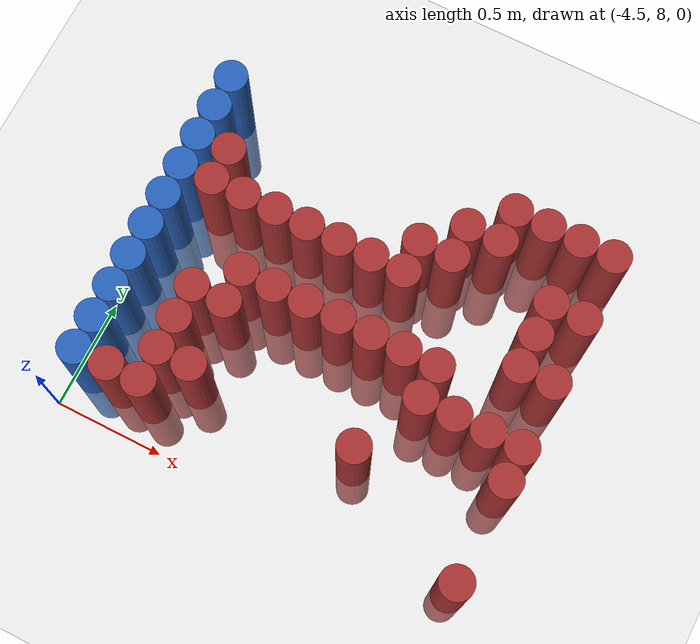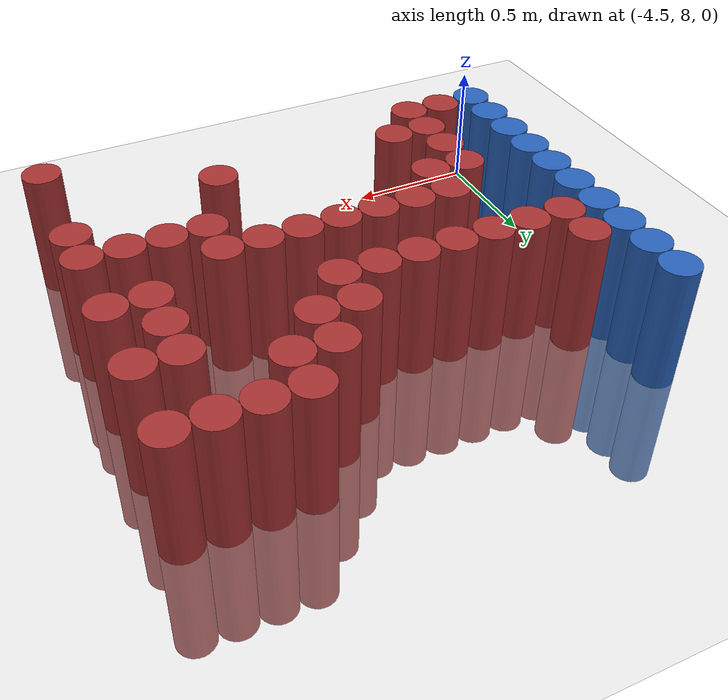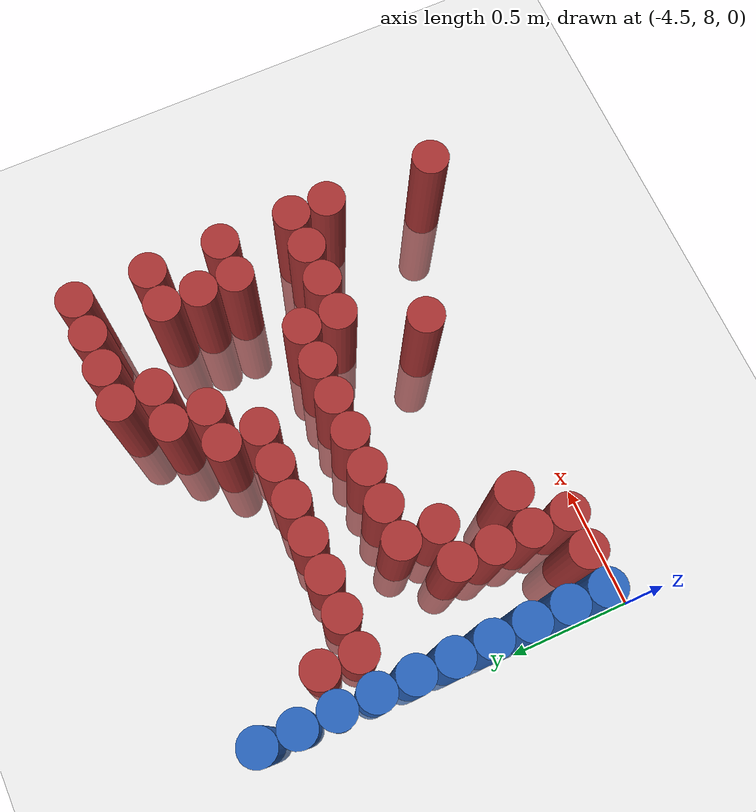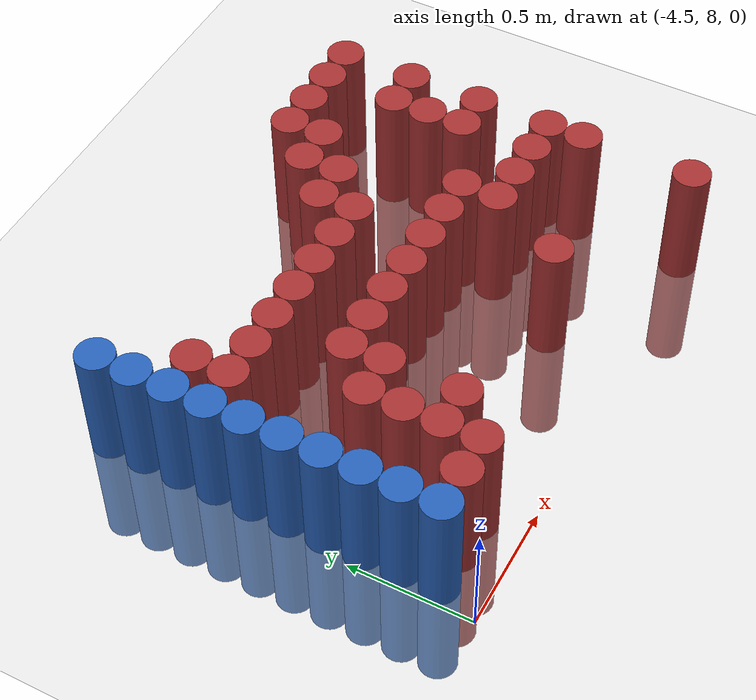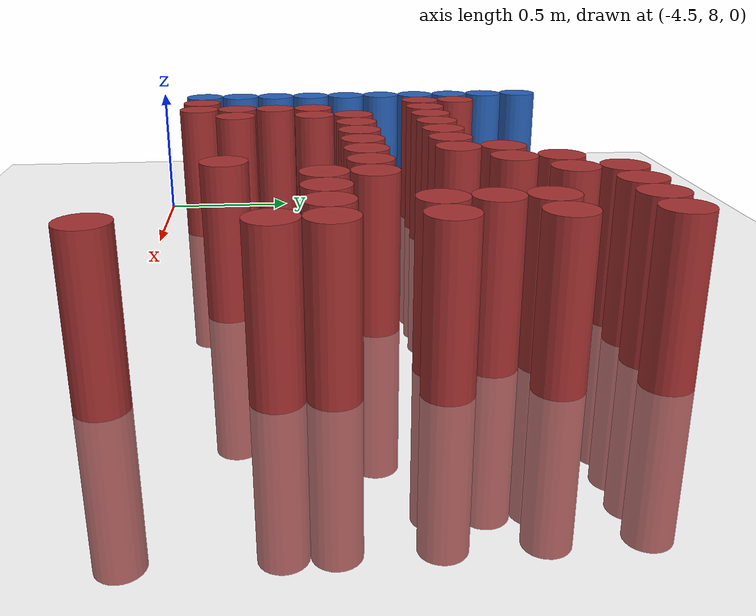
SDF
<sdf version="1.6">
 <world name="default">
  <model name="ground_plane">
   <static>1</static>
   <link name="link">
    <collision name="collision">
     <geometry><plane><normal>0 0 1</normal><size>100 100</size></plane></geometry>
     <surface><friction><ode><mu>100</mu><mu2>50</mu2></ode></friction></surface>
    </collision>
    <visual name="visual">
     <cast_shadows>0</cast_shadows>
     <geometry><plane><normal>0 0 1</normal><size>100 100</size></plane></geometry>
     <material>
      <script><uri>file://media/materials/scripts/gazebo.material</uri><name>Gazebo/Grey</name></script>
     </material>
    </visual>
   </link>
  </model>
  <model name="unit_cylinder_116">
   <static>1</static>
   <pose>-4.425000 8.175000 0.000000 0.000000 0.000000 0.000000</pose>
   <link name="link">
    <inertial>
     <mass>1</mass>
     <inertia><ixx>0.145833</ixx><ixy>0</ixy><ixz>0</ixz><iyy>0.145833</iyy><iyz>0</iyz><izz>0.125</izz></inertia>
    </inertial>
    <collision name="collision">
     <geometry><cylinder><radius>0.075000</radius><length>1</length></cylinder></geometry>
    </collision>
    <visual name="visual">
     <geometry><cylinder><radius>0.075000</radius><length>1</length></cylinder></geometry>
     <material>
      <ambient>0.152000 0.379000 0.720000 1</ambient>
      <diffuse>0.152000 0.379000 0.720000 1</diffuse>
     </material>
     <material>
      <script><name>Gazebo/Grey</name><uri>file://media/materials/scripts/gazebo.material</uri></script>
     </material>
    </visual>
   </link>
  </model>
  <model name="unit_cylinder_117">
   <static>1</static>
   <pose>-4.425000 8.325000 0.000000 0.000000 0.000000 0.000000</pose>
   <link name="link">
    <inertial>
     <mass>1</mass>
     <inertia><ixx>0.145833</ixx><ixy>0</ixy><ixz>0</ixz><iyy>0.145833</iyy><iyz>0</iyz><izz>0.125</izz></inertia>
    </inertial>
    <collision name="collision">
     <geometry><cylinder><radius>0.075000</radius><length>1</length></cylinder></geometry>
    </collision>
    <visual name="visual">
     <geometry><cylinder><radius>0.075000</radius><length>1</length></cylinder></geometry>
     <material>
      <ambient>0.152000 0.379000 0.720000 1</ambient>
      <diffuse>0.152000 0.379000 0.720000 1</diffuse>
     </material>
     <material>
      <script><name>Gazebo/Grey</name><uri>file://media/materials/scripts/gazebo.material</uri></script>
     </material>
    </visual>
   </link>
  </model>
  <model name="unit_cylinder_118">
   <static>1</static>
   <pose>-4.425000 8.475000 0.000000 0.000000 0.000000 0.000000</pose>
   <link name="link">
    <inertial>
     <mass>1</mass>
     <inertia><ixx>0.145833</ixx><ixy>0</ixy><ixz>0</ixz><iyy>0.145833</iyy><iyz>0</iyz><izz>0.125</izz></inertia>
    </inertial>
    <collision name="collision">
     <geometry><cylinder><radius>0.075000</radius><length>1</length></cylinder></geometry>
    </collision>
    <visual name="visual">
     <geometry><cylinder><radius>0.075000</radius><length>1</length></cylinder></geometry>
     <material>
      <ambient>0.152000 0.379000 0.720000 1</ambient>
      <diffuse>0.152000 0.379000 0.720000 1</diffuse>
     </material>
     <material>
      <script><name>Gazebo/Grey</name><uri>file://media/materials/scripts/gazebo.material</uri></script>
     </material>
    </visual>
   </link>
  </model>
  <model name="unit_cylinder_119">
   <static>1</static>
   <pose>-4.425000 8.625000 0.000000 0.000000 0.000000 0.000000</pose>
   <link name="link">
    <inertial>
     <mass>1</mass>
     <inertia><ixx>0.145833</ixx><ixy>0</ixy><ixz>0</ixz><iyy>0.145833</iyy><iyz>0</iyz><izz>0.125</izz></inertia>
    </inertial>
    <collision name="collision">
     <geometry><cylinder><radius>0.075000</radius><length>1</length></cylinder></geometry>
    </collision>
    <visual name="visual">
     <geometry><cylinder><radius>0.075000</radius><length>1</length></cylinder></geometry>
     <material>
      <ambient>0.152000 0.379000 0.720000 1</ambient>
      <diffuse>0.152000 0.379000 0.720000 1</diffuse>
     </material>
     <material>
      <script><name>Gazebo/Grey</name><uri>file://media/materials/scripts/gazebo.material</uri></script>
     </material>
    </visual>
   </link>
  </model>
  <model name="unit_cylinder_120">
   <static>1</static>
   <pose>-4.425000 8.775000 0.000000 0.000000 0.000000 0.000000</pose>
   <link name="link">
    <inertial>
     <mass>1</mass>
     <inertia><ixx>0.145833</ixx><ixy>0</ixy><ixz>0</ixz><iyy>0.145833</iyy><iyz>0</iyz><izz>0.125</izz></inertia>
    </inertial>
    <collision name="collision">
     <geometry><cylinder><radius>0.075000</radius><length>1</length></cylinder></geometry>
    </collision>
    <visual name="visual">
     <geometry><cylinder><radius>0.075000</radius><length>1</length></cylinder></geometry>
     <material>
      <ambient>0.152000 0.379000 0.720000 1</ambient>
      <diffuse>0.152000 0.379000 0.720000 1</diffuse>
     </material>
     <material>
      <script><name>Gazebo/Grey</name><uri>file://media/materials/scripts/gazebo.material</uri></script>
     </material>
    </visual>
   </link>
  </model>
  <model name="unit_cylinder_121">
   <static>1</static>
   <pose>-4.425000 8.925000 0.000000 0.000000 0.000000 0.000000</pose>
   <link name="link">
    <inertial>
     <mass>1</mass>
     <inertia><ixx>0.145833</ixx><ixy>0</ixy><ixz>0</ixz><iyy>0.145833</iyy><iyz>0</iyz><izz>0.125</izz></inertia>
    </inertial>
    <collision name="collision">
     <geometry><cylinder><radius>0.075000</radius><length>1</length></cylinder></geometry>
    </collision>
    <visual name="visual">
     <geometry><cylinder><radius>0.075000</radius><length>1</length></cylinder></geometry>
     <material>
      <ambient>0.152000 0.379000 0.720000 1</ambient>
      <diffuse>0.152000 0.379000 0.720000 1</diffuse>
     </material>
     <material>
      <script><name>Gazebo/Grey</name><uri>file://media/materials/scripts/gazebo.material</uri></script>
     </material>
    </visual>
   </link>
  </model>
  <model name="unit_cylinder_122">
   <static>1</static>
   <pose>-4.425000 9.075000 0.000000 0.000000 0.000000 0.000000</pose>
   <link name="link">
    <inertial>
     <mass>1</mass>
     <inertia><ixx>0.145833</ixx><ixy>0</ixy><ixz>0</ixz><iyy>0.145833</iyy><iyz>0</iyz><izz>0.125</izz></inertia>
    </inertial>
    <collision name="collision">
     <geometry><cylinder><radius>0.075000</radius><length>1</length></cylinder></geometry>
    </collision>
    <visual name="visual">
     <geometry><cylinder><radius>0.075000</radius><length>1</length></cylinder></geometry>
     <material>
      <ambient>0.152000 0.379000 0.720000 1</ambient>
      <diffuse>0.152000 0.379000 0.720000 1</diffuse>
     </material>
     <material>
      <script><name>Gazebo/Grey</name><uri>file://media/materials/scripts/gazebo.material</uri></script>
     </material>
    </visual>
   </link>
  </model>
  <model name="unit_cylinder_123">
   <static>1</static>
   <pose>-4.425000 9.225000 0.000000 0.000000 0.000000 0.000000</pose>
   <link name="link">
    <inertial>
     <mass>1</mass>
     <inertia><ixx>0.145833</ixx><ixy>0</ixy><ixz>0</ixz><iyy>0.145833</iyy><iyz>0</iyz><izz>0.125</izz></inertia>
    </inertial>
    <collision name="collision">
     <geometry><cylinder><radius>0.075000</radius><length>1</length></cylinder></geometry>
    </collision>
    <visual name="visual">
     <geometry><cylinder><radius>0.075000</radius><length>1</length></cylinder></geometry>
     <material>
      <ambient>0.152000 0.379000 0.720000 1</ambient>
      <diffuse>0.152000 0.379000 0.720000 1</diffuse>
     </material>
     <material>
      <script><name>Gazebo/Grey</name><uri>file://media/materials/scripts/gazebo.material</uri></script>
     </material>
    </visual>
   </link>
  </model>
  <model name="unit_cylinder_124">
   <static>1</static>
   <pose>-4.425000 9.375000 0.000000 0.000000 0.000000 0.000000</pose>
   <link name="link">
    <inertial>
     <mass>1</mass>
     <inertia><ixx>0.145833</ixx><ixy>0</ixy><ixz>0</ixz><iyy>0.145833</iyy><iyz>0</iyz><izz>0.125</izz></inertia>
    </inertial>
    <collision name="collision">
     <geometry><cylinder><radius>0.075000</radius><length>1</length></cylinder></geometry>
    </collision>
    <visual name="visual">
     <geometry><cylinder><radius>0.075000</radius><length>1</length></cylinder></geometry>
     <material>
      <ambient>0.152000 0.379000 0.720000 1</ambient>
      <diffuse>0.152000 0.379000 0.720000 1</diffuse>
     </material>
     <material>
      <script><name>Gazebo/Grey</name><uri>file://media/materials/scripts/gazebo.material</uri></script>
     </material>
    </visual>
   </link>
  </model>
  <model name="unit_cylinder_125">
   <static>1</static>
   <pose>-4.425000 9.525000 0.000000 0.000000 0.000000 0.000000</pose>
   <link name="link">
    <inertial>
     <mass>1</mass>
     <inertia><ixx>0.145833</ixx><ixy>0</ixy><ixz>0</ixz><iyy>0.145833</iyy><iyz>0</iyz><izz>0.125</izz></inertia>
    </inertial>
    <collision name="collision">
     <geometry><cylinder><radius>0.075000</radius><length>1</length></cylinder></geometry>
    </collision>
    <visual name="visual">
     <geometry><cylinder><radius>0.075000</radius><length>1</length></cylinder></geometry>
     <material>
      <ambient>0.152000 0.379000 0.720000 1</ambient>
      <diffuse>0.152000 0.379000 0.720000 1</diffuse>
     </material>
     <material>
      <script><name>Gazebo/Grey</name><uri>file://media/materials/scripts/gazebo.material</uri></script>
     </material>
    </visual>
   </link>
  </model>
  <model name="unit_cylinder_143">
   <static>1</static>
   <pose>-4.275000 8.175000 0.000000 0.000000 0.000000 0.000000</pose>
   <link name="link">
    <inertial>
     <mass>1</mass>
     <inertia><ixx>0.145833</ixx><ixy>0</ixy><ixz>0</ixz><iyy>0.145833</iyy><iyz>0</iyz><izz>0.125</izz></inertia>
    </inertial>
    <collision name="collision">
     <geometry><cylinder><radius>0.075000</radius><length>1</length></cylinder></geometry>
    </collision>
    <visual name="visual">
     <geometry><cylinder><radius>0.075000</radius><length>1</length></cylinder></geometry>
     <material>
      <ambient>0.648000 0.192000 0.192000 1</ambient>
      <diffuse>0.648000 0.192000 0.192000 1</diffuse>
     </material>
     <material>
      <script><name>Gazebo/Grey</name><uri>file://media/materials/scripts/gazebo.material</uri></script>
     </material>
    </visual>
   </link>
  </model>
  <model name="unit_cylinder_144">
   <static>1</static>
   <pose>-4.275000 9.075000 0.000000 0.000000 0.000000 0.000000</pose>
   <link name="link">
    <inertial>
     <mass>1</mass>
     <inertia><ixx>0.145833</ixx><ixy>0</ixy><ixz>0</ixz><iyy>0.145833</iyy><iyz>0</iyz><izz>0.125</izz></inertia>
    </inertial>
    <collision name="collision">
     <geometry><cylinder><radius>0.075000</radius><length>1</length></cylinder></geometry>
    </collision>
    <visual name="visual">
     <geometry><cylinder><radius>0.075000</radius><length>1</length></cylinder></geometry>
     <material>
      <ambient>0.648000 0.192000 0.192000 1</ambient>
      <diffuse>0.648000 0.192000 0.192000 1</diffuse>
     </material>
     <material>
      <script><name>Gazebo/Grey</name><uri>file://media/materials/scripts/gazebo.material</uri></script>
     </material>
    </visual>
   </link>
  </model>
  <model name="unit_cylinder_145">
   <static>1</static>
   <pose>-4.275000 9.225000 0.000000 0.000000 0.000000 0.000000</pose>
   <link name="link">
    <inertial>
     <mass>1</mass>
     <inertia><ixx>0.145833</ixx><ixy>0</ixy><ixz>0</ixz><iyy>0.145833</iyy><iyz>0</iyz><izz>0.125</izz></inertia>
    </inertial>
    <collision name="collision">
     <geometry><cylinder><radius>0.075000</radius><length>1</length></cylinder></geometry>
    </collision>
    <visual name="visual">
     <geometry><cylinder><radius>0.075000</radius><length>1</length></cylinder></geometry>
     <material>
      <ambient>0.648000 0.192000 0.192000 1</ambient>
      <diffuse>0.648000 0.192000 0.192000 1</diffuse>
     </material>
     <material>
      <script><name>Gazebo/Grey</name><uri>file://media/materials/scripts/gazebo.material</uri></script>
     </material>
    </visual>
   </link>
  </model>
  <model name="unit_cylinder_151">
   <static>1</static>
   <pose>-4.125000 8.175000 0.000000 0.000000 0.000000 0.000000</pose>
   <link name="link">
    <inertial>
     <mass>1</mass>
     <inertia><ixx>0.145833</ixx><ixy>0</ixy><ixz>0</ixz><iyy>0.145833</iyy><iyz>0</iyz><izz>0.125</izz></inertia>
    </inertial>
    <collision name="collision">
     <geometry><cylinder><radius>0.075000</radius><length>1</length></cylinder></geometry>
    </collision>
    <visual name="visual">
     <geometry><cylinder><radius>0.075000</radius><length>1</length></cylinder></geometry>
     <material>
      <ambient>0.648000 0.192000 0.192000 1</ambient>
      <diffuse>0.648000 0.192000 0.192000 1</diffuse>
     </material>
     <material>
      <script><name>Gazebo/Grey</name><uri>file://media/materials/scripts/gazebo.material</uri></script>
     </material>
    </visual>
   </link>
  </model>
  <model name="unit_cylinder_152">
   <static>1</static>
   <pose>-4.125000 8.325000 0.000000 0.000000 0.000000 0.000000</pose>
   <link name="link">
    <inertial>
     <mass>1</mass>
     <inertia><ixx>0.145833</ixx><ixy>0</ixy><ixz>0</ixz><iyy>0.145833</iyy><iyz>0</iyz><izz>0.125</izz></inertia>
    </inertial>
    <collision name="collision">
     <geometry><cylinder><radius>0.075000</radius><length>1</length></cylinder></geometry>
    </collision>
    <visual name="visual">
     <geometry><cylinder><radius>0.075000</radius><length>1</length></cylinder></geometry>
     <material>
      <ambient>0.648000 0.192000 0.192000 1</ambient>
      <diffuse>0.648000 0.192000 0.192000 1</diffuse>
     </material>
     <material>
      <script><name>Gazebo/Grey</name><uri>file://media/materials/scripts/gazebo.material</uri></script>
     </material>
    </visual>
   </link>
  </model>
  <model name="unit_cylinder_153">
   <static>1</static>
   <pose>-4.125000 8.475000 0.000000 0.000000 0.000000 0.000000</pose>
   <link name="link">
    <inertial>
     <mass>1</mass>
     <inertia><ixx>0.145833</ixx><ixy>0</ixy><ixz>0</ixz><iyy>0.145833</iyy><iyz>0</iyz><izz>0.125</izz></inertia>
    </inertial>
    <collision name="collision">
     <geometry><cylinder><radius>0.075000</radius><length>1</length></cylinder></geometry>
    </collision>
    <visual name="visual">
     <geometry><cylinder><radius>0.075000</radius><length>1</length></cylinder></geometry>
     <material>
      <ambient>0.648000 0.192000 0.192000 1</ambient>
      <diffuse>0.648000 0.192000 0.192000 1</diffuse>
     </material>
     <material>
      <script><name>Gazebo/Grey</name><uri>file://media/materials/scripts/gazebo.material</uri></script>
     </material>
    </visual>
   </link>
  </model>
  <model name="unit_cylinder_154">
   <static>1</static>
   <pose>-4.125000 8.625000 0.000000 0.000000 0.000000 0.000000</pose>
   <link name="link">
    <inertial>
     <mass>1</mass>
     <inertia><ixx>0.145833</ixx><ixy>0</ixy><ixz>0</ixz><iyy>0.145833</iyy><iyz>0</iyz><izz>0.125</izz></inertia>
    </inertial>
    <collision name="collision">
     <geometry><cylinder><radius>0.075000</radius><length>1</length></cylinder></geometry>
    </collision>
    <visual name="visual">
     <geometry><cylinder><radius>0.075000</radius><length>1</length></cylinder></geometry>
     <material>
      <ambient>0.648000 0.192000 0.192000 1</ambient>
      <diffuse>0.648000 0.192000 0.192000 1</diffuse>
     </material>
     <material>
      <script><name>Gazebo/Grey</name><uri>file://media/materials/scripts/gazebo.material</uri></script>
     </material>
    </visual>
   </link>
  </model>
  <model name="unit_cylinder_155">
   <static>1</static>
   <pose>-4.125000 9.075000 0.000000 0.000000 0.000000 0.000000</pose>
   <link name="link">
    <inertial>
     <mass>1</mass>
     <inertia><ixx>0.145833</ixx><ixy>0</ixy><ixz>0</ixz><iyy>0.145833</iyy><iyz>0</iyz><izz>0.125</izz></inertia>
    </inertial>
    <collision name="collision">
     <geometry><cylinder><radius>0.075000</radius><length>1</length></cylinder></geometry>
    </collision>
    <visual name="visual">
     <geometry><cylinder><radius>0.075000</radius><length>1</length></cylinder></geometry>
     <material>
      <ambient>0.648000 0.192000 0.192000 1</ambient>
      <diffuse>0.648000 0.192000 0.192000 1</diffuse>
     </material>
     <material>
      <script><name>Gazebo/Grey</name><uri>file://media/materials/scripts/gazebo.material</uri></script>
     </material>
    </visual>
   </link>
  </model>
  <model name="unit_cylinder_158">
   <static>1</static>
   <pose>-3.975000 8.325000 0.000000 0.000000 0.000000 0.000000</pose>
   <link name="link">
    <inertial>
     <mass>1</mass>
     <inertia><ixx>0.145833</ixx><ixy>0</ixy><ixz>0</ixz><iyy>0.145833</iyy><iyz>0</iyz><izz>0.125</izz></inertia>
    </inertial>
    <collision name="collision">
     <geometry><cylinder><radius>0.075000</radius><length>1</length></cylinder></geometry>
    </collision>
    <visual name="visual">
     <geometry><cylinder><radius>0.075000</radius><length>1</length></cylinder></geometry>
     <material>
      <ambient>0.648000 0.192000 0.192000 1</ambient>
      <diffuse>0.648000 0.192000 0.192000 1</diffuse>
     </material>
     <material>
      <script><name>Gazebo/Grey</name><uri>file://media/materials/scripts/gazebo.material</uri></script>
     </material>
    </visual>
   </link>
  </model>
  <model name="unit_cylinder_159">
   <static>1</static>
   <pose>-3.975000 8.625000 0.000000 0.000000 0.000000 0.000000</pose>
   <link name="link">
    <inertial>
     <mass>1</mass>
     <inertia><ixx>0.145833</ixx><ixy>0</ixy><ixz>0</ixz><iyy>0.145833</iyy><iyz>0</iyz><izz>0.125</izz></inertia>
    </inertial>
    <collision name="collision">
     <geometry><cylinder><radius>0.075000</radius><length>1</length></cylinder></geometry>
    </collision>
    <visual name="visual">
     <geometry><cylinder><radius>0.075000</radius><length>1</length></cylinder></geometry>
     <material>
      <ambient>0.648000 0.192000 0.192000 1</ambient>
      <diffuse>0.648000 0.192000 0.192000 1</diffuse>
     </material>
     <material>
      <script><name>Gazebo/Grey</name><uri>file://media/materials/scripts/gazebo.material</uri></script>
     </material>
    </visual>
   </link>
  </model>
  <model name="unit_cylinder_160">
   <static>1</static>
   <pose>-3.975000 8.775000 0.000000 0.000000 0.000000 0.000000</pose>
   <link name="link">
    <inertial>
     <mass>1</mass>
     <inertia><ixx>0.145833</ixx><ixy>0</ixy><ixz>0</ixz><iyy>0.145833</iyy><iyz>0</iyz><izz>0.125</izz></inertia>
    </inertial>
    <collision name="collision">
     <geometry><cylinder><radius>0.075000</radius><length>1</length></cylinder></geometry>
    </collision>
    <visual name="visual">
     <geometry><cylinder><radius>0.075000</radius><length>1</length></cylinder></geometry>
     <material>
      <ambient>0.648000 0.192000 0.192000 1</ambient>
      <diffuse>0.648000 0.192000 0.192000 1</diffuse>
     </material>
     <material>
      <script><name>Gazebo/Grey</name><uri>file://media/materials/scripts/gazebo.material</uri></script>
     </material>
    </visual>
   </link>
  </model>
  <model name="unit_cylinder_161">
   <static>1</static>
   <pose>-3.975000 9.075000 0.000000 0.000000 0.000000 0.000000</pose>
   <link name="link">
    <inertial>
     <mass>1</mass>
     <inertia><ixx>0.145833</ixx><ixy>0</ixy><ixz>0</ixz><iyy>0.145833</iyy><iyz>0</iyz><izz>0.125</izz></inertia>
    </inertial>
    <collision name="collision">
     <geometry><cylinder><radius>0.075000</radius><length>1</length></cylinder></geometry>
    </collision>
    <visual name="visual">
     <geometry><cylinder><radius>0.075000</radius><length>1</length></cylinder></geometry>
     <material>
      <ambient>0.648000 0.192000 0.192000 1</ambient>
      <diffuse>0.648000 0.192000 0.192000 1</diffuse>
     </material>
     <material>
      <script><name>Gazebo/Grey</name><uri>file://media/materials/scripts/gazebo.material</uri></script>
     </material>
    </visual>
   </link>
  </model>
  <model name="unit_cylinder_166">
   <static>1</static>
   <pose>-3.825000 8.775000 0.000000 0.000000 0.000000 0.000000</pose>
   <link name="link">
    <inertial>
     <mass>1</mass>
     <inertia><ixx>0.145833</ixx><ixy>0</ixy><ixz>0</ixz><iyy>0.145833</iyy><iyz>0</iyz><izz>0.125</izz></inertia>
    </inertial>
    <collision name="collision">
     <geometry><cylinder><radius>0.075000</radius><length>1</length></cylinder></geometry>
    </collision>
    <visual name="visual">
     <geometry><cylinder><radius>0.075000</radius><length>1</length></cylinder></geometry>
     <material>
      <ambient>0.648000 0.192000 0.192000 1</ambient>
      <diffuse>0.648000 0.192000 0.192000 1</diffuse>
     </material>
     <material>
      <script><name>Gazebo/Grey</name><uri>file://media/materials/scripts/gazebo.material</uri></script>
     </material>
    </visual>
   </link>
  </model>
  <model name="unit_cylinder_167">
   <static>1</static>
   <pose>-3.825000 9.075000 0.000000 0.000000 0.000000 0.000000</pose>
   <link name="link">
    <inertial>
     <mass>1</mass>
     <inertia><ixx>0.145833</ixx><ixy>0</ixy><ixz>0</ixz><iyy>0.145833</iyy><iyz>0</iyz><izz>0.125</izz></inertia>
    </inertial>
    <collision name="collision">
     <geometry><cylinder><radius>0.075000</radius><length>1</length></cylinder></geometry>
    </collision>
    <visual name="visual">
     <geometry><cylinder><radius>0.075000</radius><length>1</length></cylinder></geometry>
     <material>
      <ambient>0.648000 0.192000 0.192000 1</ambient>
      <diffuse>0.648000 0.192000 0.192000 1</diffuse>
     </material>
     <material>
      <script><name>Gazebo/Grey</name><uri>file://media/materials/scripts/gazebo.material</uri></script>
     </material>
    </visual>
   </link>
  </model>
  <model name="unit_cylinder_173">
   <static>1</static>
   <pose>-3.675000 8.775000 0.000000 0.000000 0.000000 0.000000</pose>
   <link name="link">
    <inertial>
     <mass>1</mass>
     <inertia><ixx>0.145833</ixx><ixy>0</ixy><ixz>0</ixz><iyy>0.145833</iyy><iyz>0</iyz><izz>0.125</izz></inertia>
    </inertial>
    <collision name="collision">
     <geometry><cylinder><radius>0.075000</radius><length>1</length></cylinder></geometry>
    </collision>
    <visual name="visual">
     <geometry><cylinder><radius>0.075000</radius><length>1</length></cylinder></geometry>
     <material>
      <ambient>0.648000 0.192000 0.192000 1</ambient>
      <diffuse>0.648000 0.192000 0.192000 1</diffuse>
     </material>
     <material>
      <script><name>Gazebo/Grey</name><uri>file://media/materials/scripts/gazebo.material</uri></script>
     </material>
    </visual>
   </link>
  </model>
  <model name="unit_cylinder_174">
   <static>1</static>
   <pose>-3.675000 9.075000 0.000000 0.000000 0.000000 0.000000</pose>
   <link name="link">
    <inertial>
     <mass>1</mass>
     <inertia><ixx>0.145833</ixx><ixy>0</ixy><ixz>0</ixz><iyy>0.145833</iyy><iyz>0</iyz><izz>0.125</izz></inertia>
    </inertial>
    <collision name="collision">
     <geometry><cylinder><radius>0.075000</radius><length>1</length></cylinder></geometry>
    </collision>
    <visual name="visual">
     <geometry><cylinder><radius>0.075000</radius><length>1</length></cylinder></geometry>
     <material>
      <ambient>0.648000 0.192000 0.192000 1</ambient>
      <diffuse>0.648000 0.192000 0.192000 1</diffuse>
     </material>
     <material>
      <script><name>Gazebo/Grey</name><uri>file://media/materials/scripts/gazebo.material</uri></script>
     </material>
    </visual>
   </link>
  </model>
  <model name="unit_cylinder_181">
   <static>1</static>
   <pose>-3.525000 8.775000 0.000000 0.000000 0.000000 0.000000</pose>
   <link name="link">
    <inertial>
     <mass>1</mass>
     <inertia><ixx>0.145833</ixx><ixy>0</ixy><ixz>0</ixz><iyy>0.145833</iyy><iyz>0</iyz><izz>0.125</izz></inertia>
    </inertial>
    <collision name="collision">
     <geometry><cylinder><radius>0.075000</radius><length>1</length></cylinder></geometry>
    </collision>
    <visual name="visual">
     <geometry><cylinder><radius>0.075000</radius><length>1</length></cylinder></geometry>
     <material>
      <ambient>0.648000 0.192000 0.192000 1</ambient>
      <diffuse>0.648000 0.192000 0.192000 1</diffuse>
     </material>
     <material>
      <script><name>Gazebo/Grey</name><uri>file://media/materials/scripts/gazebo.material</uri></script>
     </material>
    </visual>
   </link>
  </model>
  <model name="unit_cylinder_182">
   <static>1</static>
   <pose>-3.525000 9.075000 0.000000 0.000000 0.000000 0.000000</pose>
   <link name="link">
    <inertial>
     <mass>1</mass>
     <inertia><ixx>0.145833</ixx><ixy>0</ixy><ixz>0</ixz><iyy>0.145833</iyy><iyz>0</iyz><izz>0.125</izz></inertia>
    </inertial>
    <collision name="collision">
     <geometry><cylinder><radius>0.075000</radius><length>1</length></cylinder></geometry>
    </collision>
    <visual name="visual">
     <geometry><cylinder><radius>0.075000</radius><length>1</length></cylinder></geometry>
     <material>
      <ambient>0.648000 0.192000 0.192000 1</ambient>
      <diffuse>0.648000 0.192000 0.192000 1</diffuse>
     </material>
     <material>
      <script><name>Gazebo/Grey</name><uri>file://media/materials/scripts/gazebo.material</uri></script>
     </material>
    </visual>
   </link>
  </model>
  <model name="unit_cylinder_188">
   <static>1</static>
   <pose>-3.375000 8.775000 0.000000 0.000000 0.000000 0.000000</pose>
   <link name="link">
    <inertial>
     <mass>1</mass>
     <inertia><ixx>0.145833</ixx><ixy>0</ixy><ixz>0</ixz><iyy>0.145833</iyy><iyz>0</iyz><izz>0.125</izz></inertia>
    </inertial>
    <collision name="collision">
     <geometry><cylinder><radius>0.075000</radius><length>1</length></cylinder></geometry>
    </collision>
    <visual name="visual">
     <geometry><cylinder><radius>0.075000</radius><length>1</length></cylinder></geometry>
     <material>
      <ambient>0.648000 0.192000 0.192000 1</ambient>
      <diffuse>0.648000 0.192000 0.192000 1</diffuse>
     </material>
     <material>
      <script><name>Gazebo/Grey</name><uri>file://media/materials/scripts/gazebo.material</uri></script>
     </material>
    </visual>
   </link>
  </model>
  <model name="unit_cylinder_189">
   <static>1</static>
   <pose>-3.375000 9.075000 0.000000 0.000000 0.000000 0.000000</pose>
   <link name="link">
    <inertial>
     <mass>1</mass>
     <inertia><ixx>0.145833</ixx><ixy>0</ixy><ixz>0</ixz><iyy>0.145833</iyy><iyz>0</iyz><izz>0.125</izz></inertia>
    </inertial>
    <collision name="collision">
     <geometry><cylinder><radius>0.075000</radius><length>1</length></cylinder></geometry>
    </collision>
    <visual name="visual">
     <geometry><cylinder><radius>0.075000</radius><length>1</length></cylinder></geometry>
     <material>
      <ambient>0.648000 0.192000 0.192000 1</ambient>
      <diffuse>0.648000 0.192000 0.192000 1</diffuse>
     </material>
     <material>
      <script><name>Gazebo/Grey</name><uri>file://media/materials/scripts/gazebo.material</uri></script>
     </material>
    </visual>
   </link>
  </model>
  <model name="unit_cylinder_190">
   <static>1</static>
   <pose>-3.375000 9.225000 0.000000 0.000000 0.000000 0.000000</pose>
   <link name="link">
    <inertial>
     <mass>1</mass>
     <inertia><ixx>0.145833</ixx><ixy>0</ixy><ixz>0</ixz><iyy>0.145833</iyy><iyz>0</iyz><izz>0.125</izz></inertia>
    </inertial>
    <collision name="collision">
     <geometry><cylinder><radius>0.075000</radius><length>1</length></cylinder></geometry>
    </collision>
    <visual name="visual">
     <geometry><cylinder><radius>0.075000</radius><length>1</length></cylinder></geometry>
     <material>
      <ambient>0.648000 0.192000 0.192000 1</ambient>
      <diffuse>0.648000 0.192000 0.192000 1</diffuse>
     </material>
     <material>
      <script><name>Gazebo/Grey</name><uri>file://media/materials/scripts/gazebo.material</uri></script>
     </material>
    </visual>
   </link>
  </model>
  <model name="unit_cylinder_192">
   <static>1</static>
   <pose>-3.225000 8.325000 0.000000 0.000000 0.000000 0.000000</pose>
   <link name="link">
    <inertial>
     <mass>1</mass>
     <inertia><ixx>0.145833</ixx><ixy>0</ixy><ixz>0</ixz><iyy>0.145833</iyy><iyz>0</iyz><izz>0.125</izz></inertia>
    </inertial>
    <collision name="collision">
     <geometry><cylinder><radius>0.075000</radius><length>1</length></cylinder></geometry>
    </collision>
    <visual name="visual">
     <geometry><cylinder><radius>0.075000</radius><length>1</length></cylinder></geometry>
     <material>
      <ambient>0.648000 0.192000 0.192000 1</ambient>
      <diffuse>0.648000 0.192000 0.192000 1</diffuse>
     </material>
     <material>
      <script><name>Gazebo/Grey</name><uri>file://media/materials/scripts/gazebo.material</uri></script>
     </material>
    </visual>
   </link>
  </model>
  <model name="unit_cylinder_193">
   <static>1</static>
   <pose>-3.225000 8.775000 0.000000 0.000000 0.000000 0.000000</pose>
   <link name="link">
    <inertial>
     <mass>1</mass>
     <inertia><ixx>0.145833</ixx><ixy>0</ixy><ixz>0</ixz><iyy>0.145833</iyy><iyz>0</iyz><izz>0.125</izz></inertia>
    </inertial>
    <collision name="collision">
     <geometry><cylinder><radius>0.075000</radius><length>1</length></cylinder></geometry>
    </collision>
    <visual name="visual">
     <geometry><cylinder><radius>0.075000</radius><length>1</length></cylinder></geometry>
     <material>
      <ambient>0.648000 0.192000 0.192000 1</ambient>
      <diffuse>0.648000 0.192000 0.192000 1</diffuse>
     </material>
     <material>
      <script><name>Gazebo/Grey</name><uri>file://media/materials/scripts/gazebo.material</uri></script>
     </material>
    </visual>
   </link>
  </model>
  <model name="unit_cylinder_194">
   <static>1</static>
   <pose>-3.225000 9.225000 0.000000 0.000000 0.000000 0.000000</pose>
   <link name="link">
    <inertial>
     <mass>1</mass>
     <inertia><ixx>0.145833</ixx><ixy>0</ixy><ixz>0</ixz><iyy>0.145833</iyy><iyz>0</iyz><izz>0.125</izz></inertia>
    </inertial>
    <collision name="collision">
     <geometry><cylinder><radius>0.075000</radius><length>1</length></cylinder></geometry>
    </collision>
    <visual name="visual">
     <geometry><cylinder><radius>0.075000</radius><length>1</length></cylinder></geometry>
     <material>
      <ambient>0.648000 0.192000 0.192000 1</ambient>
      <diffuse>0.648000 0.192000 0.192000 1</diffuse>
     </material>
     <material>
      <script><name>Gazebo/Grey</name><uri>file://media/materials/scripts/gazebo.material</uri></script>
     </material>
    </visual>
   </link>
  </model>
  <model name="unit_cylinder_195">
   <static>1</static>
   <pose>-3.225000 9.375000 0.000000 0.000000 0.000000 0.000000</pose>
   <link name="link">
    <inertial>
     <mass>1</mass>
     <inertia><ixx>0.145833</ixx><ixy>0</ixy><ixz>0</ixz><iyy>0.145833</iyy><iyz>0</iyz><izz>0.125</izz></inertia>
    </inertial>
    <collision name="collision">
     <geometry><cylinder><radius>0.075000</radius><length>1</length></cylinder></geometry>
    </collision>
    <visual name="visual">
     <geometry><cylinder><radius>0.075000</radius><length>1</length></cylinder></geometry>
     <material>
      <ambient>0.648000 0.192000 0.192000 1</ambient>
      <diffuse>0.648000 0.192000 0.192000 1</diffuse>
     </material>
     <material>
      <script><name>Gazebo/Grey</name><uri>file://media/materials/scripts/gazebo.material</uri></script>
     </material>
    </visual>
   </link>
  </model>
  <model name="unit_cylinder_199">
   <static>1</static>
   <pose>-3.075000 8.625000 0.000000 0.000000 0.000000 0.000000</pose>
   <link name="link">
    <inertial>
     <mass>1</mass>
     <inertia><ixx>0.145833</ixx><ixy>0</ixy><ixz>0</ixz><iyy>0.145833</iyy><iyz>0</iyz><izz>0.125</izz></inertia>
    </inertial>
    <collision name="collision">
     <geometry><cylinder><radius>0.075000</radius><length>1</length></cylinder></geometry>
    </collision>
    <visual name="visual">
     <geometry><cylinder><radius>0.075000</radius><length>1</length></cylinder></geometry>
     <material>
      <ambient>0.648000 0.192000 0.192000 1</ambient>
      <diffuse>0.648000 0.192000 0.192000 1</diffuse>
     </material>
     <material>
      <script><name>Gazebo/Grey</name><uri>file://media/materials/scripts/gazebo.material</uri></script>
     </material>
    </visual>
   </link>
  </model>
  <model name="unit_cylinder_200">
   <static>1</static>
   <pose>-3.075000 8.775000 0.000000 0.000000 0.000000 0.000000</pose>
   <link name="link">
    <inertial>
     <mass>1</mass>
     <inertia><ixx>0.145833</ixx><ixy>0</ixy><ixz>0</ixz><iyy>0.145833</iyy><iyz>0</iyz><izz>0.125</izz></inertia>
    </inertial>
    <collision name="collision">
     <geometry><cylinder><radius>0.075000</radius><length>1</length></cylinder></geometry>
    </collision>
    <visual name="visual">
     <geometry><cylinder><radius>0.075000</radius><length>1</length></cylinder></geometry>
     <material>
      <ambient>0.648000 0.192000 0.192000 1</ambient>
      <diffuse>0.648000 0.192000 0.192000 1</diffuse>
     </material>
     <material>
      <script><name>Gazebo/Grey</name><uri>file://media/materials/scripts/gazebo.material</uri></script>
     </material>
    </visual>
   </link>
  </model>
  <model name="unit_cylinder_201">
   <static>1</static>
   <pose>-3.075000 9.375000 0.000000 0.000000 0.000000 0.000000</pose>
   <link name="link">
    <inertial>
     <mass>1</mass>
     <inertia><ixx>0.145833</ixx><ixy>0</ixy><ixz>0</ixz><iyy>0.145833</iyy><iyz>0</iyz><izz>0.125</izz></inertia>
    </inertial>
    <collision name="collision">
     <geometry><cylinder><radius>0.075000</radius><length>1</length></cylinder></geometry>
    </collision>
    <visual name="visual">
     <geometry><cylinder><radius>0.075000</radius><length>1</length></cylinder></geometry>
     <material>
      <ambient>0.648000 0.192000 0.192000 1</ambient>
      <diffuse>0.648000 0.192000 0.192000 1</diffuse>
     </material>
     <material>
      <script><name>Gazebo/Grey</name><uri>file://media/materials/scripts/gazebo.material</uri></script>
     </material>
    </visual>
   </link>
  </model>
  <model name="unit_cylinder_202">
   <static>1</static>
   <pose>-3.075000 9.525000 0.000000 0.000000 0.000000 0.000000</pose>
   <link name="link">
    <inertial>
     <mass>1</mass>
     <inertia><ixx>0.145833</ixx><ixy>0</ixy><ixz>0</ixz><iyy>0.145833</iyy><iyz>0</iyz><izz>0.125</izz></inertia>
    </inertial>
    <collision name="collision">
     <geometry><cylinder><radius>0.075000</radius><length>1</length></cylinder></geometry>
    </collision>
    <visual name="visual">
     <geometry><cylinder><radius>0.075000</radius><length>1</length></cylinder></geometry>
     <material>
      <ambient>0.648000 0.192000 0.192000 1</ambient>
      <diffuse>0.648000 0.192000 0.192000 1</diffuse>
     </material>
     <material>
      <script><name>Gazebo/Grey</name><uri>file://media/materials/scripts/gazebo.material</uri></script>
     </material>
    </visual>
   </link>
  </model>
  <model name="unit_cylinder_207">
   <static>1</static>
   <pose>-2.925000 8.625000 0.000000 0.000000 0.000000 0.000000</pose>
   <link name="link">
    <inertial>
     <mass>1</mass>
     <inertia><ixx>0.145833</ixx><ixy>0</ixy><ixz>0</ixz><iyy>0.145833</iyy><iyz>0</iyz><izz>0.125</izz></inertia>
    </inertial>
    <collision name="collision">
     <geometry><cylinder><radius>0.075000</radius><length>1</length></cylinder></geometry>
    </collision>
    <visual name="visual">
     <geometry><cylinder><radius>0.075000</radius><length>1</length></cylinder></geometry>
     <material>
      <ambient>0.648000 0.192000 0.192000 1</ambient>
      <diffuse>0.648000 0.192000 0.192000 1</diffuse>
     </material>
     <material>
      <script><name>Gazebo/Grey</name><uri>file://media/materials/scripts/gazebo.material</uri></script>
     </material>
    </visual>
   </link>
  </model>
  <model name="unit_cylinder_208">
   <static>1</static>
   <pose>-2.925000 9.525000 0.000000 0.000000 0.000000 0.000000</pose>
   <link name="link">
    <inertial>
     <mass>1</mass>
     <inertia><ixx>0.145833</ixx><ixy>0</ixy><ixz>0</ixz><iyy>0.145833</iyy><iyz>0</iyz><izz>0.125</izz></inertia>
    </inertial>
    <collision name="collision">
     <geometry><cylinder><radius>0.075000</radius><length>1</length></cylinder></geometry>
    </collision>
    <visual name="visual">
     <geometry><cylinder><radius>0.075000</radius><length>1</length></cylinder></geometry>
     <material>
      <ambient>0.648000 0.192000 0.192000 1</ambient>
      <diffuse>0.648000 0.192000 0.192000 1</diffuse>
     </material>
     <material>
      <script><name>Gazebo/Grey</name><uri>file://media/materials/scripts/gazebo.material</uri></script>
     </material>
    </visual>
   </link>
  </model>
  <model name="unit_cylinder_213">
   <static>1</static>
   <pose>-2.775000 8.625000 0.000000 0.000000 0.000000 0.000000</pose>
   <link name="link">
    <inertial>
     <mass>1</mass>
     <inertia><ixx>0.145833</ixx><ixy>0</ixy><ixz>0</ixz><iyy>0.145833</iyy><iyz>0</iyz><izz>0.125</izz></inertia>
    </inertial>
    <collision name="collision">
     <geometry><cylinder><radius>0.075000</radius><length>1</length></cylinder></geometry>
    </collision>
    <visual name="visual">
     <geometry><cylinder><radius>0.075000</radius><length>1</length></cylinder></geometry>
     <material>
      <ambient>0.648000 0.192000 0.192000 1</ambient>
      <diffuse>0.648000 0.192000 0.192000 1</diffuse>
     </material>
     <material>
      <script><name>Gazebo/Grey</name><uri>file://media/materials/scripts/gazebo.material</uri></script>
     </material>
    </visual>
   </link>
  </model>
  <model name="unit_cylinder_214">
   <static>1</static>
   <pose>-2.775000 8.925000 0.000000 0.000000 0.000000 0.000000</pose>
   <link name="link">
    <inertial>
     <mass>1</mass>
     <inertia><ixx>0.145833</ixx><ixy>0</ixy><ixz>0</ixz><iyy>0.145833</iyy><iyz>0</iyz><izz>0.125</izz></inertia>
    </inertial>
    <collision name="collision">
     <geometry><cylinder><radius>0.075000</radius><length>1</length></cylinder></geometry>
    </collision>
    <visual name="visual">
     <geometry><cylinder><radius>0.075000</radius><length>1</length></cylinder></geometry>
     <material>
      <ambient>0.648000 0.192000 0.192000 1</ambient>
      <diffuse>0.648000 0.192000 0.192000 1</diffuse>
     </material>
     <material>
      <script><name>Gazebo/Grey</name><uri>file://media/materials/scripts/gazebo.material</uri></script>
     </material>
    </visual>
   </link>
  </model>
  <model name="unit_cylinder_215">
   <static>1</static>
   <pose>-2.775000 9.075000 0.000000 0.000000 0.000000 0.000000</pose>
   <link name="link">
    <inertial>
     <mass>1</mass>
     <inertia><ixx>0.145833</ixx><ixy>0</ixy><ixz>0</ixz><iyy>0.145833</iyy><iyz>0</iyz><izz>0.125</izz></inertia>
    </inertial>
    <collision name="collision">
     <geometry><cylinder><radius>0.075000</radius><length>1</length></cylinder></geometry>
    </collision>
    <visual name="visual">
     <geometry><cylinder><radius>0.075000</radius><length>1</length></cylinder></geometry>
     <material>
      <ambient>0.648000 0.192000 0.192000 1</ambient>
      <diffuse>0.648000 0.192000 0.192000 1</diffuse>
     </material>
     <material>
      <script><name>Gazebo/Grey</name><uri>file://media/materials/scripts/gazebo.material</uri></script>
     </material>
    </visual>
   </link>
  </model>
  <model name="unit_cylinder_216">
   <static>1</static>
   <pose>-2.775000 9.225000 0.000000 0.000000 0.000000 0.000000</pose>
   <link name="link">
    <inertial>
     <mass>1</mass>
     <inertia><ixx>0.145833</ixx><ixy>0</ixy><ixz>0</ixz><iyy>0.145833</iyy><iyz>0</iyz><izz>0.125</izz></inertia>
    </inertial>
    <collision name="collision">
     <geometry><cylinder><radius>0.075000</radius><length>1</length></cylinder></geometry>
    </collision>
    <visual name="visual">
     <geometry><cylinder><radius>0.075000</radius><length>1</length></cylinder></geometry>
     <material>
      <ambient>0.648000 0.192000 0.192000 1</ambient>
      <diffuse>0.648000 0.192000 0.192000 1</diffuse>
     </material>
     <material>
      <script><name>Gazebo/Grey</name><uri>file://media/materials/scripts/gazebo.material</uri></script>
     </material>
    </visual>
   </link>
  </model>
  <model name="unit_cylinder_217">
   <static>1</static>
   <pose>-2.775000 9.525000 0.000000 0.000000 0.000000 0.000000</pose>
   <link name="link">
    <inertial>
     <mass>1</mass>
     <inertia><ixx>0.145833</ixx><ixy>0</ixy><ixz>0</ixz><iyy>0.145833</iyy><iyz>0</iyz><izz>0.125</izz></inertia>
    </inertial>
    <collision name="collision">
     <geometry><cylinder><radius>0.075000</radius><length>1</length></cylinder></geometry>
    </collision>
    <visual name="visual">
     <geometry><cylinder><radius>0.075000</radius><length>1</length></cylinder></geometry>
     <material>
      <ambient>0.648000 0.192000 0.192000 1</ambient>
      <diffuse>0.648000 0.192000 0.192000 1</diffuse>
     </material>
     <material>
      <script><name>Gazebo/Grey</name><uri>file://media/materials/scripts/gazebo.material</uri></script>
     </material>
    </visual>
   </link>
  </model>
  <model name="unit_cylinder_223">
   <static>1</static>
   <pose>-2.625000 8.025000 0.000000 0.000000 0.000000 0.000000</pose>
   <link name="link">
    <inertial>
     <mass>1</mass>
     <inertia><ixx>0.145833</ixx><ixy>0</ixy><ixz>0</ixz><iyy>0.145833</iyy><iyz>0</iyz><izz>0.125</izz></inertia>
    </inertial>
    <collision name="collision">
     <geometry><cylinder><radius>0.075000</radius><length>1</length></cylinder></geometry>
    </collision>
    <visual name="visual">
     <geometry><cylinder><radius>0.075000</radius><length>1</length></cylinder></geometry>
     <material>
      <ambient>0.648000 0.192000 0.192000 1</ambient>
      <diffuse>0.648000 0.192000 0.192000 1</diffuse>
     </material>
     <material>
      <script><name>Gazebo/Grey</name><uri>file://media/materials/scripts/gazebo.material</uri></script>
     </material>
    </visual>
   </link>
  </model>
  <model name="unit_cylinder_224">
   <static>1</static>
   <pose>-2.625000 8.475000 0.000000 0.000000 0.000000 0.000000</pose>
   <link name="link">
    <inertial>
     <mass>1</mass>
     <inertia><ixx>0.145833</ixx><ixy>0</ixy><ixz>0</ixz><iyy>0.145833</iyy><iyz>0</iyz><izz>0.125</izz></inertia>
    </inertial>
    <collision name="collision">
     <geometry><cylinder><radius>0.075000</radius><length>1</length></cylinder></geometry>
    </collision>
    <visual name="visual">
     <geometry><cylinder><radius>0.075000</radius><length>1</length></cylinder></geometry>
     <material>
      <ambient>0.648000 0.192000 0.192000 1</ambient>
      <diffuse>0.648000 0.192000 0.192000 1</diffuse>
     </material>
     <material>
      <script><name>Gazebo/Grey</name><uri>file://media/materials/scripts/gazebo.material</uri></script>
     </material>
    </visual>
   </link>
  </model>
  <model name="unit_cylinder_225">
   <static>1</static>
   <pose>-2.625000 8.625000 0.000000 0.000000 0.000000 0.000000</pose>
   <link name="link">
    <inertial>
     <mass>1</mass>
     <inertia><ixx>0.145833</ixx><ixy>0</ixy><ixz>0</ixz><iyy>0.145833</iyy><iyz>0</iyz><izz>0.125</izz></inertia>
    </inertial>
    <collision name="collision">
     <geometry><cylinder><radius>0.075000</radius><length>1</length></cylinder></geometry>
    </collision>
    <visual name="visual">
     <geometry><cylinder><radius>0.075000</radius><length>1</length></cylinder></geometry>
     <material>
      <ambient>0.648000 0.192000 0.192000 1</ambient>
      <diffuse>0.648000 0.192000 0.192000 1</diffuse>
     </material>
     <material>
      <script><name>Gazebo/Grey</name><uri>file://media/materials/scripts/gazebo.material</uri></script>
     </material>
    </visual>
   </link>
  </model>
  <model name="unit_cylinder_226">
   <static>1</static>
   <pose>-2.625000 8.925000 0.000000 0.000000 0.000000 0.000000</pose>
   <link name="link">
    <inertial>
     <mass>1</mass>
     <inertia><ixx>0.145833</ixx><ixy>0</ixy><ixz>0</ixz><iyy>0.145833</iyy><iyz>0</iyz><izz>0.125</izz></inertia>
    </inertial>
    <collision name="collision">
     <geometry><cylinder><radius>0.075000</radius><length>1</length></cylinder></geometry>
    </collision>
    <visual name="visual">
     <geometry><cylinder><radius>0.075000</radius><length>1</length></cylinder></geometry>
     <material>
      <ambient>0.648000 0.192000 0.192000 1</ambient>
      <diffuse>0.648000 0.192000 0.192000 1</diffuse>
     </material>
     <material>
      <script><name>Gazebo/Grey</name><uri>file://media/materials/scripts/gazebo.material</uri></script>
     </material>
    </visual>
   </link>
  </model>
  <model name="unit_cylinder_227">
   <static>1</static>
   <pose>-2.625000 9.225000 0.000000 0.000000 0.000000 0.000000</pose>
   <link name="link">
    <inertial>
     <mass>1</mass>
     <inertia><ixx>0.145833</ixx><ixy>0</ixy><ixz>0</ixz><iyy>0.145833</iyy><iyz>0</iyz><izz>0.125</izz></inertia>
    </inertial>
    <collision name="collision">
     <geometry><cylinder><radius>0.075000</radius><length>1</length></cylinder></geometry>
    </collision>
    <visual name="visual">
     <geometry><cylinder><radius>0.075000</radius><length>1</length></cylinder></geometry>
     <material>
      <ambient>0.648000 0.192000 0.192000 1</ambient>
      <diffuse>0.648000 0.192000 0.192000 1</diffuse>
     </material>
     <material>
      <script><name>Gazebo/Grey</name><uri>file://media/materials/scripts/gazebo.material</uri></script>
     </material>
    </visual>
   </link>
  </model>
  <model name="unit_cylinder_228">
   <static>1</static>
   <pose>-2.625000 9.525000 0.000000 0.000000 0.000000 0.000000</pose>
   <link name="link">
    <inertial>
     <mass>1</mass>
     <inertia><ixx>0.145833</ixx><ixy>0</ixy><ixz>0</ixz><iyy>0.145833</iyy><iyz>0</iyz><izz>0.125</izz></inertia>
    </inertial>
    <collision name="collision">
     <geometry><cylinder><radius>0.075000</radius><length>1</length></cylinder></geometry>
    </collision>
    <visual name="visual">
     <geometry><cylinder><radius>0.075000</radius><length>1</length></cylinder></geometry>
     <material>
      <ambient>0.648000 0.192000 0.192000 1</ambient>
      <diffuse>0.648000 0.192000 0.192000 1</diffuse>
     </material>
     <material>
      <script><name>Gazebo/Grey</name><uri>file://media/materials/scripts/gazebo.material</uri></script>
     </material>
    </visual>
   </link>
  </model>
 </world>
</sdf>
